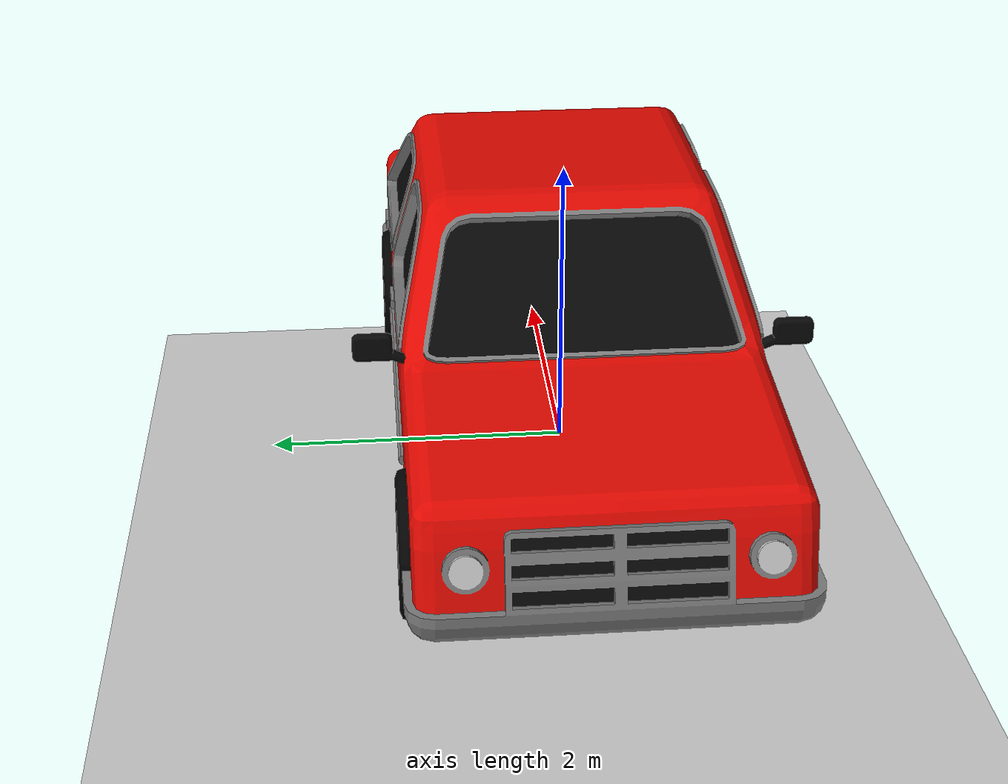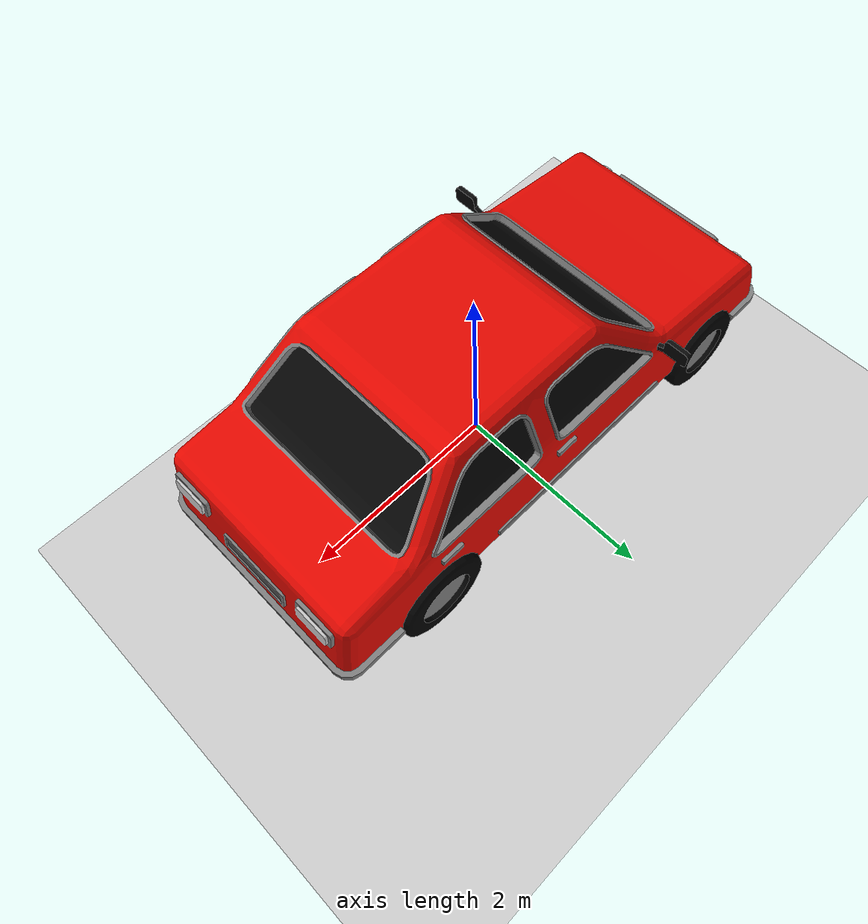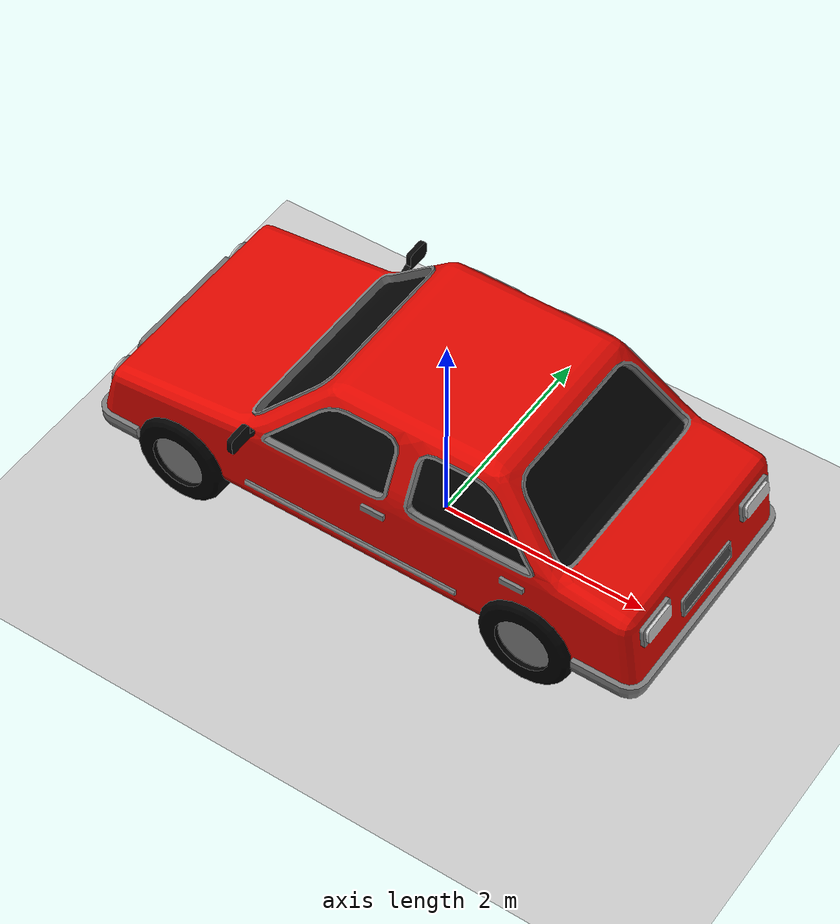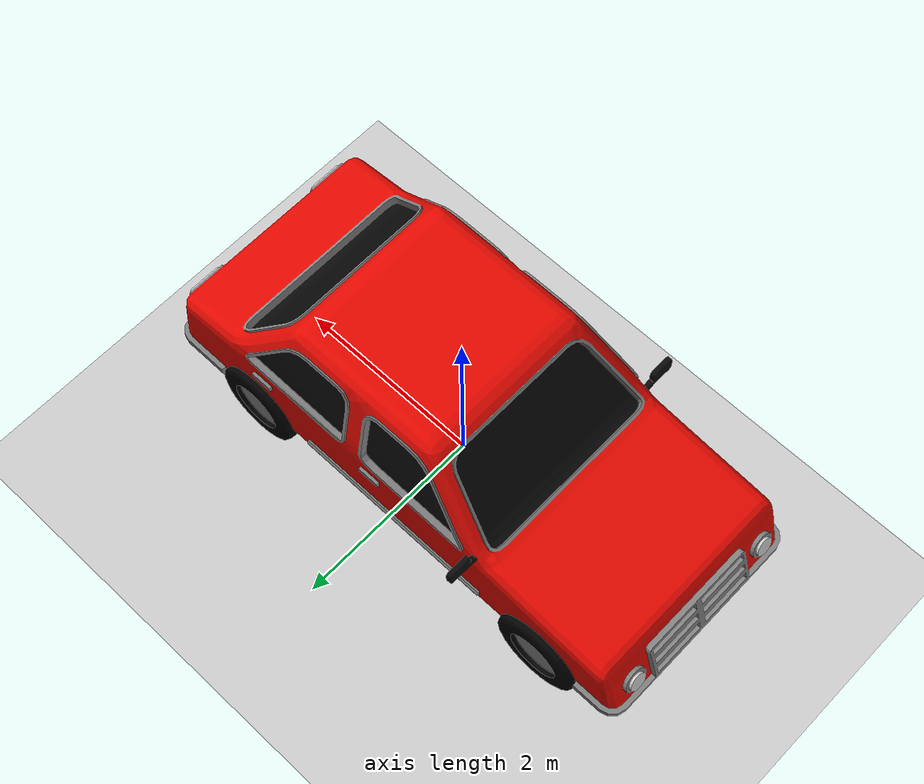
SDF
<?xml version="1.0"?>
<sdf version="1.5">
    <world name="basic">

        <!-- Ground Plane -->
        <include>
            <uri>model://ground_plane</uri>
            <pose>0 0 -1 0 0 0</pose>
        </include>
        <!-- Sun -->
        <include>
            <uri>model://sun</uri>
        </include>

        <include>-->
            <uri>model://car</uri>
            <pose>0 0 0 0 0 0</pose>
       </include>-->

<!--        &lt;!&ndash; Only one ROS interface plugin is required per world, as any other plugin can connect a Gazebo-->
<!--            topic to a ROS topic (or vise versa). &ndash;&gt;-->

<!--        A physics behind the codes-->
        <spherical_coordinates>
            <surface_model>EARTH_WGS84</surface_model>
            <latitude_deg>-22.905</latitude_deg>
            <longitude_deg>-43.029</longitude_deg>

            <!-- Long e Lat de RJ-RJ -->
            <elevation>0</elevation>
            <heading_deg>0</heading_deg>
        </spherical_coordinates>
        <physics type='ode'>
            <ode>
                <solver>
                    <type>quick</type>
                    <iters>1000</iters>
                    <sor>1.3</sor>
                </solver>
                <constraints>
                    <cfm>0</cfm>
                    <erp>0.2</erp>
                    <contact_max_correcting_vel>100</contact_max_correcting_vel>
                    <contact_surface_layer>0.001</contact_surface_layer>
                </constraints>
            </ode>
            <max_step_size>0.01</max_step_size>
            <real_time_factor>1</real_time_factor>
            <real_time_update_rate>100</real_time_update_rate>
            <gravity>0 0 -9.8</gravity>
        </physics>
        <!-- Unser Interface -->
        <gui fullscreen='0'>
            <camera name='user_camera'>
                <pose frame=''>0.59 0.75 1.5 0 0.4 -2.7</pose>
                <view_controller>orbit</view_controller>
                <projection_type>perspective</projection_type>
            </camera>
        </gui>
    </world>
</sdf>

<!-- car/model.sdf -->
<sdf version="1.5">
    <model name="A car">
        <static>true</static>
        <link name="link">
            <pose>0 0 0 0 0 0</pose>
            <collision name="collision">
                <geometry>
                    <mesh>
                        <uri>model://car/meshes/car.dae</uri>
                    </mesh>
                </geometry>
            </collision>
            <visual name="visual">
                <geometry>
                    <mesh>
                        <uri>model://car/meshes/car.dae</uri>
                    </mesh>
                </geometry>
                <material>
                </material>
            </visual>
        </link>
    </model>
</sdf>
